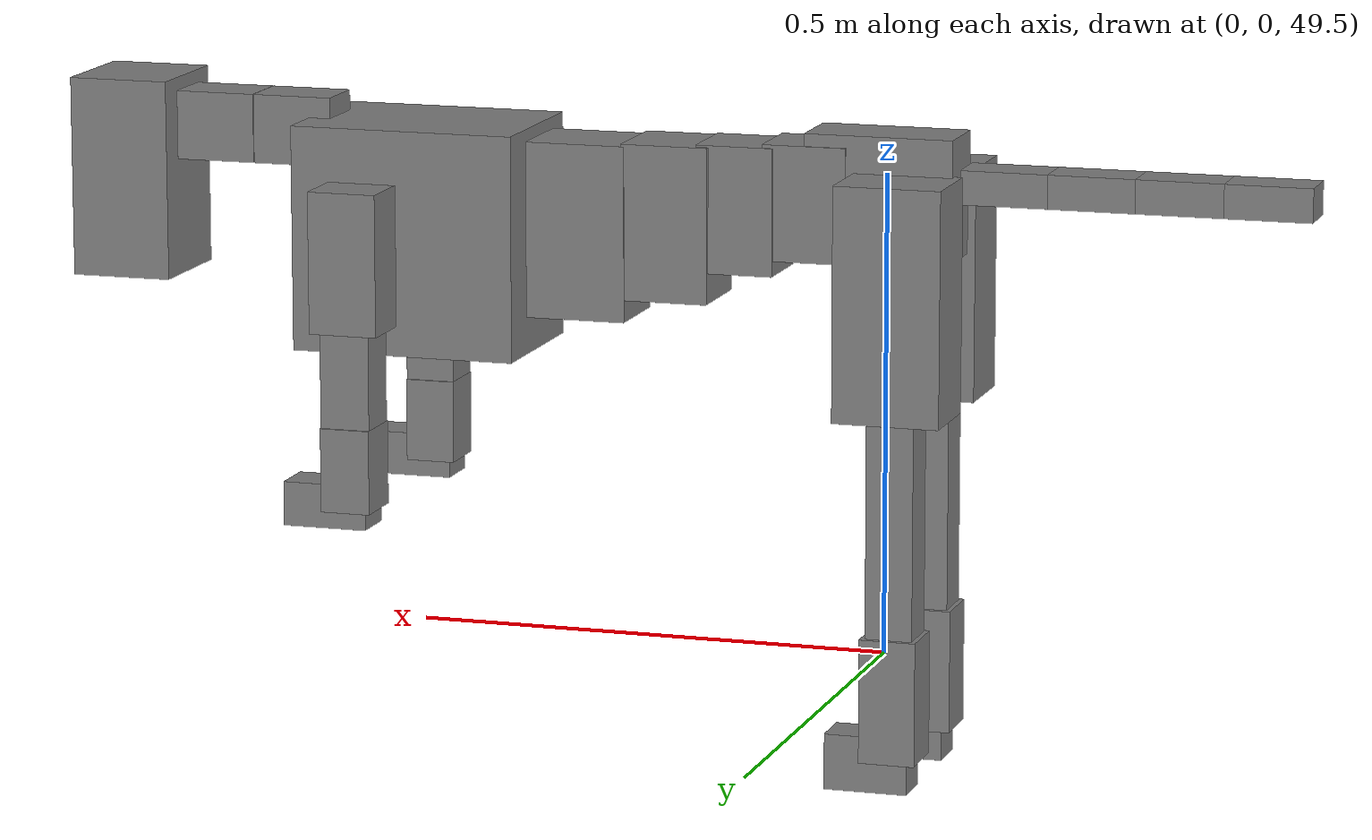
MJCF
<mujoco model="dog">

    <default>
        <joint armature="0.02" stiffness="1" damping="0.2" limited="true"/>
        <geom condim="3" friction="1 0.05 0.05" margin="0.01"/>
        <motor ctrllimited="true" ctrlrange="-1.0 1.0" forcelimited="true" gear="50"/>
    </default>

    <compiler inertiafromgeom="true" angle="radian"/>

    <option timestep="0.016" iterations="50" tolerance="1e-10" solver="Newton" jacobian="dense" cone="pyramidal"/>

    <size nconmax="20000" njmax="60000" nstack="5000000"/>
    <visual>
        <map force="0.1" zfar="30"/>
        <rgba haze="0.15 0.25 0.35 1"/>
        <quality shadowsize="2048"/>
        <global offwidth="800" offheight="800"/>
    </visual>

    <asset>
        <texture type="skybox" builtin="gradient" rgb1="0.3 0.5 0.7" rgb2="0 0 0" width="512" height="512"/>
        <texture name="texplane" type="2d" builtin="checker" rgb1=".2 .3 .4" rgb2=".1 0.15 0.2" width="512" height="512"
                 mark="cross" markrgb=".8 .8 .8"/>
        <texture name="texgeom" type="cube" builtin="flat" mark="cross" width="127" height="1278" rgb1="0.8 0.6 0.4"
                 rgb2="0.8 0.6 0.4" markrgb="1 1 1" random="0.01"/>

        <material name="matplane" reflectance="0.3" texture="texplane" texrepeat="1 1" texuniform="true"/>
        <material name="matgeom" texture="texgeom" texuniform="true" rgba="0.8 0.6 .4 1"/>
    </asset>

    <worldbody>
        <geom name="floor" pos="0 0 0" size="0 0 .25" type="plane" material="matplane" condim="3"/>

        <light directional="false" diffuse=".2 .2 .2" specular="0 0 0" pos="0 0 5" dir="0 0 -1" castshadow="false"/>
        <light mode="targetbodycom" target="torso" directional="false" diffuse=".8 .8 .8" specular="0.3 0.3 0.3"
               pos="0 0 4.0" dir="0 0 -1"/>

        <body name="root" pos="0 0 50">
            <freejoint name="root_1"/>
            <geom type="box" pos="0 0 -0.02" size="0.0774  0.0358  0.063" density="2030"/>

            <body name="spine1" pos="0.054 0 0">
                <joint name="spine1_y" axis="0 1 0" range="0 0.7" limited="true"/>
                <geom type="box" pos="0.02375 0 -0.03" size="0.04375  0.0375  0.05985" density="2030"/>

                <body name="spine2" pos="0.0612 0 0">
                    <joint name="spine2_y" axis="0 1 0" range="-0.15 0.15" limited="true"/>
                    <geom type="box" pos="0.03555  0  -0.04" size="0.04055  0.039  0.06615" density="2030"/>

                    <body name="spine3" pos="0.0730 0 0">
                        <joint name="spine3_y" axis="0 1 0" range="-0.15 0.15" limited="true"/>
                        <geom type="box" pos="0.03555  0  -0.057" size="0.04555  0.0445  0.081" density="2030"/>

                        <body name="spine4" pos="0.0780 0 0">
                            <joint name="spine4_y" axis="0 1 0" range="-0.15 0.15" limited="true"/>
                            <geom type="box" pos="0.05265  0  -0.07" size="0.05265  0.045  0.09135" density="2030"/>

                            <body name="torso" pos="0.1082 0 0">
                                <joint name="torso_y" axis="0 1 0" range="-0.15 0.15" limited="true"/>
                                <geom type="box" pos="0.11925  0  -0.085" size="0.11925  0.085  0.11745"
                                      density="2030"/>

                                <body name="neck1" pos="0.2160  0   0.0180">
                                    <joint name="neck1_y" axis="0 1 0" range="-1.2  -1" limited="true"/>
                                    <geom type="box" pos="0.0423  0  0" size="0.0423  0.03  0.036" density="2325"/>

                                    <body name="neck2" pos="0.0853  0  0">
                                        <joint name="neck2_y" axis="0 1 0" range="0.1  0" limited="true"/>
                                        <geom type="box" pos="0.0423  0  0" size="0.0423  0.03  0.036" density="2325"/>

                                        <body name="head" pos="0.0853  0  0">
                                            <joint name="head_y" axis="0 1 0" range="-0.3  -0.2" limited="true"/>
                                            <geom type="box" pos="0.0531  0  -0.055" size="0.0531  0.06  0.1044"
                                                  density="4030"/>

                                        </body>
                                    </body>
                                </body>

                                <body name="front_shoulder" pos="0.156  0   -0.0480">
                                    <joint name="front_shoulder_y" axis="0 1 0" range="-1 1.5" limited="true"/>
                                    <geom type="box" pos="0 0.13 -0.0469" size="0.0361  0.0309  0.0736" density="1158"/>
                                    <geom type="box" pos="0 -0.13 -0.0469" size="0.0361  0.0309  0.0736"
                                          density="1158"/>

                                    <body name="front_elbow" pos="0  0  -0.0939">
                                        <joint name="front_elbow_y" axis="0 1 0" range="-2 0" limited="true"/>
                                        <geom type="box" pos="0 0.13 -0.0691" size="0.0261  0.0267  0.0691"
                                              density="1081"/>
                                        <geom type="box" pos="0 -0.13 -0.0691" size="0.0261  0.0267  0.0691"
                                              density="1081"/>

                                        <body name="front_wrist" pos="0  0  -0.1382">
                                            <joint name="front_wrist_y" axis="0 1 0" range="-0.2 0" limited="true"/>
                                            <geom type="box" pos="0 0.13 -0.0305" size="0.0262  0.0291  0.0437"
                                                  density="1664"/>
                                            <geom type="box" pos="0 -0.13 -0.0305" size="0.0262  0.0291  0.0437"
                                                  density="1664"/>

                                            <body name="front_finger_end" pos="0  0  -0.0611">
                                                <joint name="front_finger_y" axis="0 1 0" range="-0.4 1"
                                                       limited="true"/>
                                                <geom type="box" pos="0.0242  0.13  -0.0080"
                                                      size="0.0444  0.0242  0.0230" density="1515"/>
                                                <geom type="box" pos="0.0242  -0.13  -0.0080"
                                                      size="0.0444  0.0242  0.0230" density="1515"/>

                                            </body>

                                        </body>
                                    </body>
                                </body>

                            </body>
                        </body>
                    </body>
                </body>
            </body>

            <body name="back_hip" pos="-0.03 0 -0.018">
                <joint name="back_hip_y" axis="0 1 0" range="-1.5 0.3" limited="true"/>
                <geom type="box" pos="0 0.07 -0.0982" size="0.0556  0.0436  0.1210" density="1154"/>
                <geom type="box" pos="0 -0.07 -0.0982" size="0.0556  0.0436  0.1210" density="1154"/>

                <body name="back_knee" pos="0  0  -0.1964">
                    <joint name="back_knee_y" axis="0 1 0" range="0 2.8" limited="true"/>
                    <geom type="box" pos="0 0.07 -0.1296" size="0.0245  0.0242  0.1451" density="1227"/>
                    <geom type="box" pos="0 -0.07 -0.1296" size="0.0245  0.0242  0.1451" density="1227"/>

                    <body name="back_ankle" pos="0  0  -0.2592">
                        <joint name="back_ankle_y" axis="0 1 0" range="-2.2 0" limited="true"/>
                        <geom type="box" pos="0 0.07 -0.0534" size="0.0293  0.0293  0.0646" density="1284"/>
                        <geom type="box" pos="0 -0.07 -0.0534" size="0.0293  0.0293  0.0646" density="1284"/>

                        <body name="back_toe_end" pos="0  0  -0.1067">
                            <joint name="back_toe_y" axis="0 1 0" range="-0.4 1" limited="true"/>
                            <geom type="box" pos="0.0236  0.07  -0.0141" size="0.0433  0.0236  0.0291" density="1515"/>
                            <geom type="box" pos="0.0236  -0.07  -0.0141" size="0.0433  0.0236  0.0291" density="1515"/>

                        </body>
                    </body>
                </body>
            </body>

            <body name="tail1" pos="-0.074 0 -0.006">
                <joint name="tail1_y" axis="0 1 0" range="-0.2 0.2" limited="true"/>
                <geom type="box" pos="-0.0536  0  0" size="0.045  0.025  0.0175" density="1587"/>

                <body name="tail2" pos="-0.09 0 0">
                    <joint name="tail2_y" axis="0 1 0" range="-0.2 0.2" limited="true"/>
                    <geom type="box" pos="-0.0536  0  0" size="0.045  0.025  0.0175" density="1587"/>

                    <body name="tail3" pos="-0.09 0 0">
                        <joint name="tail3_y" axis="0 1 0" range="-0.2 0.2" limited="true"/>
                        <geom type="box" pos="-0.0536  0  0" size="0.045  0.025  0.0175" density="1587"/>

                        <body name="tail4" pos="-0.09 0 0">
                            <joint name="tail4_y" axis="0 1 0" range="-0.2 0.2" limited="true"/>
                            <geom type="box" pos="-0.0536  0  0" size="0.045  0.025  0.0175" density="1587"/>

                        </body>
                    </body>
                </body>
            </body>
        </body>
    </worldbody>

    <actuator>
        <motor joint="spine1_y" forcerange="-150 150     "/>
        <motor joint="spine2_y" forcerange="-150 150     "/>
        <motor joint="spine3_y" forcerange="-150 150     "/>
        <motor joint="spine4_y" forcerange="-150 150     "/>
        <motor joint="torso_y" forcerange="-150 150     "/>
        <motor joint="neck1_y" forcerange="-100 100       "/>
        <motor joint="neck2_y" forcerange="-100 100       "/>
        <motor joint="head_y" forcerange="-150 150       "/>
        <motor joint="front_shoulder_y" forcerange="-132.32 173.58"/>
        <motor joint="front_elbow_y" forcerange="-133.88 159.97"/>
        <motor joint="front_wrist_y" forcerange="-117.82 115.05"/>
        <motor joint="front_finger_y" forcerange="-27.00 62.02"/>
        <motor joint="back_hip_y" forcerange="-385.69 395.86"/>
        <motor joint="back_knee_y" forcerange="-202.95 348.97"/>
        <motor joint="back_angle_y" forcerange="-155.73 213.71"/>
        <motor joint="back_toe_y" forcerange="-20.23 88.73"/>
        <motor joint="tail1_y" forcerange="-50 50     "/>
        <motor joint="tail2_y" forcerange="-50 50     "/>
        <motor joint="tail3_y" forcerange="-50 50     "/>
        <motor joint="tail4_y" forcerange="-50 50     "/>
    </actuator>
</mujoco>
